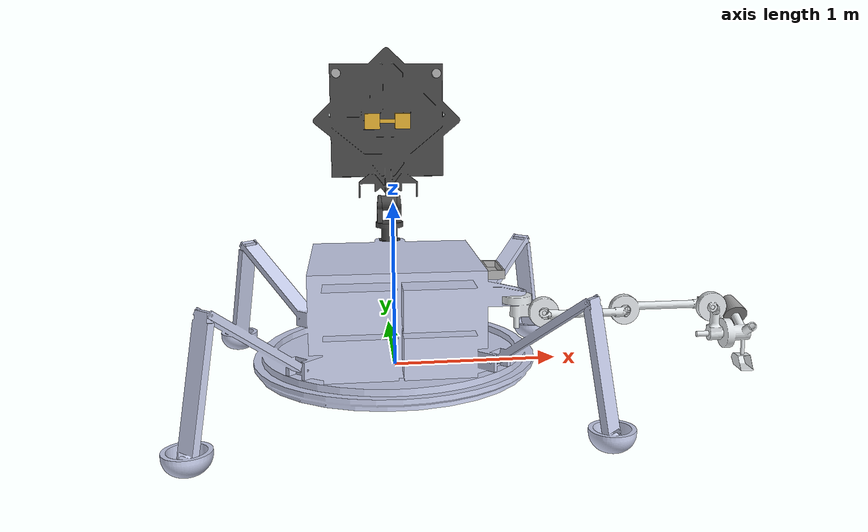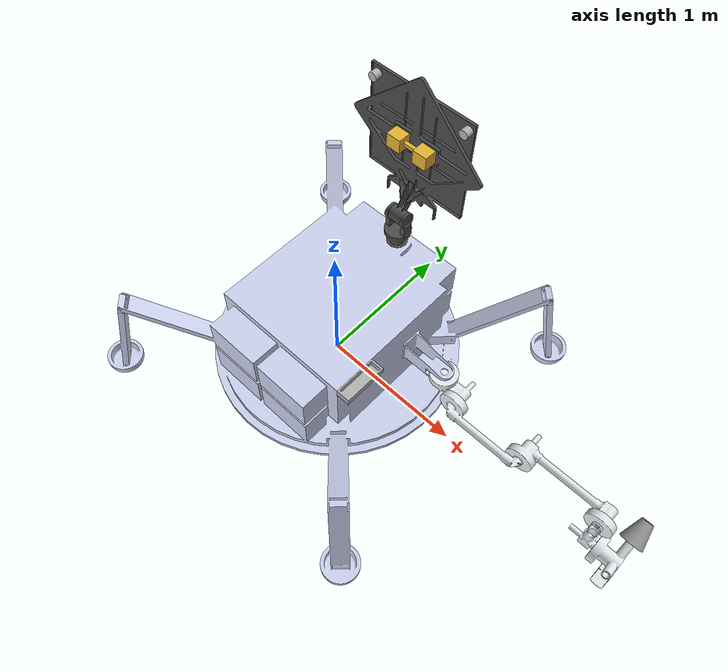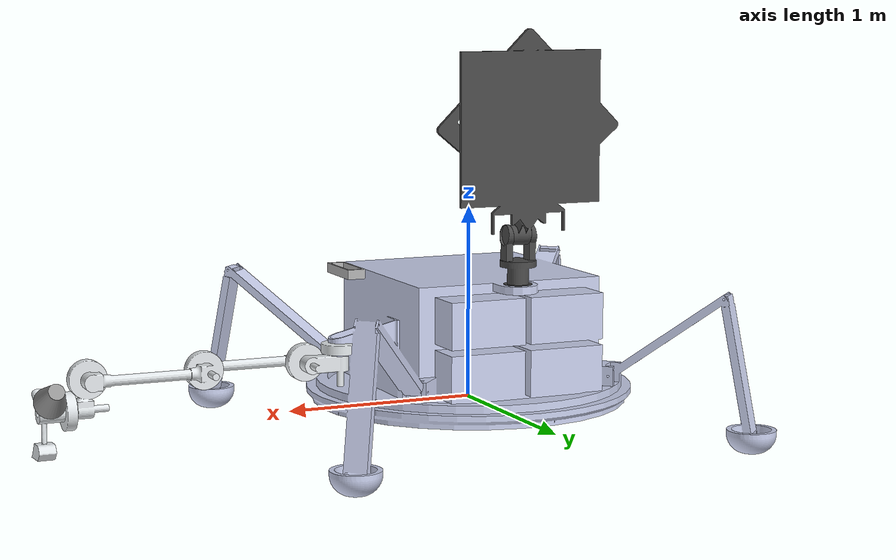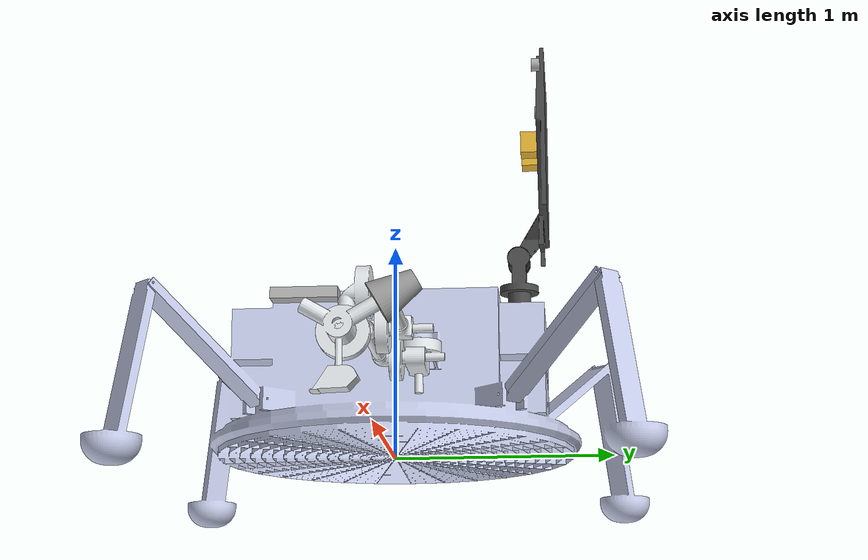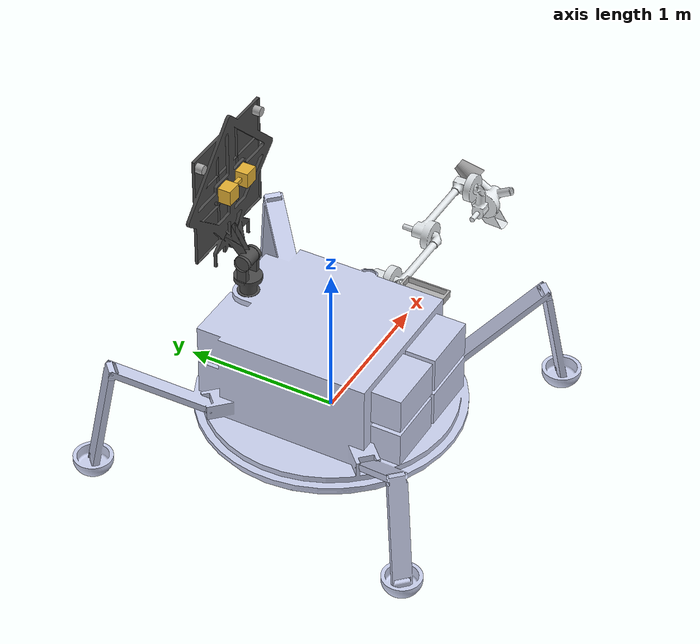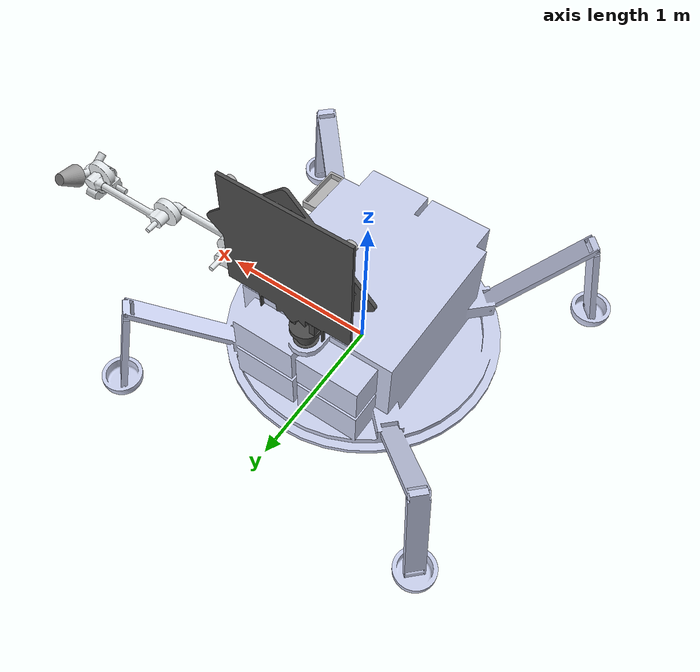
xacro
<?xml version="1.0"?>

<!-- The Notices and Disclaimers for Ocean Worlds Autonomy Testbed for Exploration
     Research and Simulation can be found in README.md in the root directory of
     this repository. -->

<robot xmlns:xacro="http://ros.org/wiki/xacro" name="lander">
  <!-- A non-standard bitmask to prevent the lander from rendering into the irradiance environment map -->
  <xacro:property name="vis_mask" value="0x00010000" />

  <xacro:include filename="$(find ow_lander)/urdf/stereo_camera_triggered.xacro" />
  <xacro:stereo_camera stereo_camera_parent_link="l_ant_panel"
                     hfov="21" img_w="1600" img_h="1200" update_rate="1"
                     off_x="0.53811" off_y="0.07" off_z="0.0" off_R="${pi/2.0}" off_P="${pi}" off_Y="${pi/2.0}"
                     vis_mask="${vis_mask}" />

  <xacro:include filename="$(find ow_lander)/urdf/lander_lights.xacro" />
  <xacro:lander_lights lander_lights_parent_link="l_ant_panel"
                     off_x="0.85" off_y="0.08" off_z="0.0" off_R="-${pi/2.0}" off_P="0.0" off_Y="0.0"
                     vis_mask="${vis_mask}" />

  <xacro:include filename="$(find ow_lander)/urdf/lander_sample_dock.xacro" />
  <xacro:lander_sample_dock lander_sample_dock_parent_link="base_link"
                     off_x="0.5226" off_y="-0.35" off_z="0.32" off_R="-${pi/2.0}" off_P="0.0" off_Y="-${pi/2.0}"
                     vis_mask="${vis_mask}" />

  <xacro:arg name="freeze_base_link" default="false"/>

  <xacro:if value="$(arg freeze_base_link)">
    <link name="world"/>
    <joint name="fixed" type="fixed">
      <origin
        xyz="$(arg x) $(arg y) $(arg z)"
        rpy="$(arg R) $(arg P) $(arg Y)"/>
      <parent link="world"/>
      <child link="base_link"/>
    </joint>
  </xacro:if>

  <link name="base_link">
    <inertial>
      <origin
        xyz="0.002242 0.0014227 0.3241"
        rpy="0 0 0" />
      <mass
        value="921.41" />
      <inertia
        ixx="32.997"
        ixy="-0.36205"
        ixz="-0.10255"
        iyy="34.208"
        iyz="-0.031969"
        izz="63.349" />
    </inertial>
    <visual>
      <origin
        xyz="0 0 0"
        rpy="0 0 0" />
      <geometry>
        <mesh
          filename="package://ow_lander/meshes/base_link.STL" />
      </geometry>
      <material
        name="">
        <color
          rgba="0.79216 0.81961 0.93333 1" />
      </material>
    </visual>
    <collision>
      <origin
        xyz="0 0 0"
        rpy="0 0 0" />
      <geometry>
        <mesh
          filename="package://ow_lander/meshes/base_link.STL" />
      </geometry>
    </collision>
  </link>
  <gazebo reference="base_link">
    <visual>
      <material>
        <diffuse>0.792 0.819 0.933 1</diffuse>
        <specular>0.4 0.4 0.4 1</specular>
        <xacro:material_script />
      </material>
      <plugin name="visibility" filename="libIRGVisibilityPlugin.so">
        <visibility_bitmask>${vis_mask}</visibility_bitmask>
      </plugin>
      <plugin name="OWLightControlPlugin" filename="libOWLightControlPlugin.so" />
    </visual>
    <selfCollide>1</selfCollide>
    <xacro:if value="$(arg freeze_base_link)">
      <collision>
        <surface>
          <contact>
            <collide_bitmask>0x0002</collide_bitmask>
          </contact>
        </surface>
      </collision>
    </xacro:if>
  </gazebo>
  <link name="l_shou">
    <inertial>
      <origin
        xyz="0.0591309542444923 0.00156004002922039 -0.0211248119973624"
        rpy="0 0 0" />
      <mass
        value="7.0292" />
      <inertia
        ixx="0.024707226"
        ixy="0.001106126"
        ixz="0.008780403"
        iyy="0.053430638"
        iyz="0.000231645"
        izz="0.050909058" />
    </inertial>
    <visual>
      <origin
        xyz="0 0 0"
        rpy="0 0 0" />
      <geometry>
        <mesh
          filename="package://ow_lander/meshes/l_shou.STL" />
      </geometry>
      <material
        name="">
        <color
          rgba="0.898039215686275 0.917647058823529 0.929411764705882 1" />
      </material>
    </visual>
    <collision>
      <origin
        xyz="0 0 0"
        rpy="0 0 0" />
      <geometry>
        <mesh
          filename="package://ow_lander/meshes/l_shou_col.STL" />
      </geometry>
    </collision>
  </link>
  <gazebo reference="l_shou">
    <visual>
      <material>
        <diffuse>0.898 0.917 0.929 1</diffuse>
        <specular>0.4 0.4 0.4 1</specular>
        <xacro:material_script />
      </material>
      <plugin name="visibility" filename="libIRGVisibilityPlugin.so">
        <visibility_bitmask>${vis_mask}</visibility_bitmask>
      </plugin>
    </visual>
    <selfCollide>1</selfCollide>
  </gazebo>
  <joint
    name="j_shou_yaw"
    type="revolute">
    <origin
      xyz="0.79 0.175 0.27"
      rpy="-3.1416 0 0" />
    <parent
      link="base_link" />
    <child
      link="l_shou" />
    <axis
      xyz="0 0 -1" />
    <dynamics damping="50.0" friction="2.6"/>
    <limit effort="70.9" velocity="0.15" lower="-1.56" upper="1.43"/>
  </joint>
  <transmission name="shou_yaw_transmission">
    <type>transmission_interface/SimpleTransmission</type>
    <joint name="j_shou_yaw">
      <hardwareInterface>hardware_interface/EffortJointInterface</hardwareInterface>
    </joint>
    <actuator name="shou_yaw_motor">
      <mechanicalReduction>1</mechanicalReduction>
    </actuator>
  </transmission>
  <link name="l_prox">
    <inertial>
      <origin
        xyz="0.162254123421932 -1.66533453693773E-16 -0.104457937721983"
        rpy="0 0 0" />
      <mass
        value="3.98552" />
      <inertia
        ixx="0.010948108"
        ixy="0.000000123"
        ixz="-0.016431513"
        iyy="0.140543709"
        iyz="0"
        izz="0.141291863" />
    </inertial>
    <visual>
      <origin
        xyz="0 0 0"
        rpy="0 0 0" />
      <geometry>
        <mesh
          filename="package://ow_lander/meshes/l_prox.STL" />
      </geometry>
      <material
        name="">
        <color
          rgba="0.898039215686275 0.917647058823529 0.929411764705882 1" />
      </material>
    </visual>
    <collision>
      <origin
        xyz="0 0 0"
        rpy="0 0 0" />
      <geometry>
        <mesh
          filename="package://ow_lander/meshes/l_prox_col.STL" />
      </geometry>
    </collision>
  </link>
  <gazebo reference="l_prox">
    <visual>
      <material>
        <diffuse>0.898 0.917 0.929 1</diffuse>
        <specular>0.4 0.4 0.4 1</specular>
        <xacro:material_script />
      </material>
      <plugin name="visibility" filename="libIRGVisibilityPlugin.so">
        <visibility_bitmask>${vis_mask}</visibility_bitmask>
      </plugin>
    </visual>
    <selfCollide>1</selfCollide>
  </gazebo>
  <joint
    name="j_shou_pitch"
    type="revolute">
    <origin
      xyz="0.16 0 0"
      rpy="1.5708 -2.4652E-32 0" />
    <parent
      link="l_shou" />
    <child
      link="l_prox" />
    <axis
      xyz="0 0 -1" />
    <dynamics damping="50.0" friction="4.6"/>
    <limit effort="101.0" velocity="0.2" lower="-0.4" upper="2.2"/>
  </joint>
  <transmission name="shou_pitch_transmission">
    <type>transmission_interface/SimpleTransmission</type>
    <joint name="j_shou_pitch">
      <hardwareInterface>hardware_interface/EffortJointInterface</hardwareInterface>
    </joint>
    <actuator name="shou_pitch_motor">
      <mechanicalReduction>1</mechanicalReduction>
    </actuator>
  </transmission>
  <link name="l_dist">
    <inertial>
      <origin
        xyz="0.221081948151538 -5.55111512312578E-16 -0.0307957719833337"
        rpy="0 0 0" />
      <mass
        value="7.67831" />
      <inertia
        ixx="0.02219061"
        ixy="0.000000071"
        ixz="0.021706466"
        iyy="0.50510019"
        iyz="0"
        izz="0.497745918" />
    </inertial>
    <visual>
      <origin
        xyz="0 0 0"
        rpy="0 0 0" />
      <geometry>
        <mesh
          filename="package://ow_lander/meshes/l_dist.STL" />
      </geometry>
      <material
        name="">
        <color
          rgba="0.898039215686275 0.917647058823529 0.929411764705882 1" />
      </material>
    </visual>
    <collision>
      <origin
        xyz="0 0 0"
        rpy="0 0 0" />
      <geometry>
        <mesh
          filename="package://ow_lander/meshes/l_dist_col.STL" />
      </geometry>
    </collision>
  </link>
  <gazebo reference="l_dist">
    <visual>
      <material>
        <diffuse>0.898 0.917 0.929 1</diffuse>
        <specular>0.4 0.4 0.4 1</specular>
        <xacro:material_script />
      </material>
      <plugin name="visibility" filename="libIRGVisibilityPlugin.so">
        <visibility_bitmask>${vis_mask}</visibility_bitmask>
      </plugin>
    </visual>
    <selfCollide>1</selfCollide>
  </gazebo>
  <joint
    name="j_prox_pitch"
    type="continuous">
    <origin
      xyz="0.53 0 0"
      rpy="9.7855E-17 0 -4.9304E-32" />
    <parent
      link="l_prox" />
    <child
      link="l_dist" />
    <axis
      xyz="0 0 -1" />
    <dynamics damping="50.0" friction="2.7"/>
    <limit effort="73.0" velocity="0.2" lower="-3.2" upper="3.2"/>
  </joint>
  <transmission name="prox_pitch_transmission">
    <type>transmission_interface/SimpleTransmission</type>
    <joint name="j_prox_pitch">
      <hardwareInterface>hardware_interface/EffortJointInterface</hardwareInterface>
    </joint>
    <actuator name="prox_pitch_motor">
      <mechanicalReduction>1</mechanicalReduction>
    </actuator>
  </transmission>
  <link name="l_wrist">
    <inertial>
      <origin
        xyz="0.0815501188839358 0.00258480207251011 -0.0286945140138527"
        rpy="0 0 0" />
      <mass
        value="4.20589" />
      <inertia
        ixx="0.013575388"
        ixy="-0.000000011"
        ixz="0.010276112"
        iyy="0.041535122"
        iyz="0.00000001"
        izz="0.040985679" />
    </inertial>
    <visual>
      <origin
        xyz="0 0 0"
        rpy="0 0 0" />
      <geometry>
        <mesh
          filename="package://ow_lander/meshes/l_wrist.STL" />
      </geometry>
      <material
        name="">
        <color
          rgba="0.898039215686275 0.917647058823529 0.929411764705882 1" />
      </material>
    </visual>
    <collision>
      <origin
        xyz="0 0 0"
        rpy="0 0 0" />
      <geometry>
        <mesh
          filename="package://ow_lander/meshes/l_wrist_col.STL" />
      </geometry>
    </collision>
  </link>
  <gazebo reference="l_wrist">
    <visual>
      <material>
        <diffuse>0.898 0.917 0.929 1</diffuse>
        <specular>0.4 0.4 0.4 1</specular>
        <xacro:material_script />
      </material>
      <plugin name="visibility" filename="libIRGVisibilityPlugin.so">
        <visibility_bitmask>${vis_mask}</visibility_bitmask>
      </plugin>
    </visual>
    <selfCollide>1</selfCollide>
  </gazebo>
  <joint
    name="j_dist_pitch"
    type="continuous">
    <origin
      xyz="0.586 0 -0.15"
      rpy="3.1416 2.1341E-16 1.5708" />
    <parent
      link="l_dist" />
    <child
      link="l_wrist" />
    <axis
      xyz="0 0 1" />
    <dynamics damping="50.0" friction="0.3"/>
    <limit effort="25.7" velocity="0.2" lower="-2.2" upper="3.65" />
  </joint>
  <transmission name="dist_pitch_transmission">
    <type>transmission_interface/SimpleTransmission</type>
    <joint name="j_dist_pitch">
      <hardwareInterface>hardware_interface/EffortJointInterface</hardwareInterface>
    </joint>
    <actuator name="dist_pitch_motor">
      <mechanicalReduction>1</mechanicalReduction>
    </actuator>
  </transmission>
  <gazebo reference="j_dist_pitch">
    <provideFeedback>true</provideFeedback>
  </gazebo>
  <gazebo>
    <plugin name="ft_sensor" filename="libgazebo_ros_ft_sensor.so">
      <jointName>j_dist_pitch</jointName>
      <topicName>/_original/arm_end_effector_force_torque</topicName>
      <updateRate>200</updateRate>  <!-- Barret F/T sensor runs at 250 Hz and has max update rate of 2500 Hz
                                         However, the gazebo_ros_ft_sensor plugin is only able to run at a max of 200 -->
      <gaussianNoise>0.2</gaussianNoise> <!-- estimated based on a profile of the barret ft sensor -->
    </plugin>
  </gazebo>
  <link name="l_hand">
    <inertial>
      <origin
        xyz="-0.00481701429042641 -3.3345796601747E-07 0.076155053161125"
        rpy="0 0 0" />
      <mass
        value="6.56759" />
      <inertia
        ixx="0.031145341"
        ixy="-0.000000019"
        ixz="0.000003178"
        iyy="0.03114165"
        iyz="0.000000034"
        izz="0.021681969" />
    </inertial>
    <visual>
      <origin
        xyz="0 0 0"
        rpy="0 0 0" />
      <geometry>
        <mesh
          filename="package://ow_lander/meshes/l_hand.STL" />
      </geometry>
      <material
        name="">
        <color
          rgba="0.898039215686275 0.917647058823529 0.929411764705882 1" />
      </material>
    </visual>
    <collision>
      <origin
        xyz="0 0 0"
        rpy="0 0 0" />
      <geometry>
        <mesh
          filename="package://ow_lander/meshes/l_hand_col.STL" />
      </geometry>
    </collision>
  </link>
  <gazebo reference="l_hand">
    <visual>
      <material>
        <diffuse>0.898 0.917 0.929 1</diffuse>
        <specular>0.4 0.4 0.4 1</specular>
        <xacro:material_script />
      </material>
      <plugin name="visibility" filename="libIRGVisibilityPlugin.so">
        <visibility_bitmask>${vis_mask}</visibility_bitmask>
      </plugin>
    </visual>
    <selfCollide>1</selfCollide>
    <!-- Keep the collision between the terrain and the hand turned off as it
         results in a slower simulation and worse physics. -->

    <collision>
      <surface>
        <contact>
          <collide_bitmask>0x0002</collide_bitmask>
        </contact>
      </surface>
    </collision>

  </gazebo>

  <joint
    name="j_hand_yaw"
    type="continuous">
    <origin
      xyz="0.163 0.2 0"
      rpy="1.5708 2.8911E-17 -3.228E-16" />
    <parent
      link="l_wrist" />
    <child
      link="l_hand" />
    <axis
      xyz="0 0 -1" />
    <dynamics damping="50.0" friction="0.3"/>
    <limit effort="25.7" velocity="0.2" lower="-3.2" upper="3.2"/>
  </joint>
  <transmission name="hand_yaw_transmission">
    <type>transmission_interface/SimpleTransmission</type>
    <joint name="j_hand_yaw">
      <hardwareInterface>hardware_interface/EffortJointInterface</hardwareInterface>
    </joint>
    <actuator name="hand_yaw_motor">
      <mechanicalReduction>1</mechanicalReduction>
    </actuator>
  </transmission>

  <link name="l_scoop">
    <inertial>
      <origin
        xyz="0.00131473194901655 -1.3855583347322E-13 0.0453283797652499"
        rpy="0 0 0" />
      <mass
        value="0.30936" />
      <inertia
        ixx="0.001031142"
        ixy="0"
        ixz="0.000157564"
        iyy="0.001225161"
        iyz="0"
        izz="0.000591262" />
    </inertial>
    <visual>
      <origin
        xyz="0 0 0"
        rpy="0 0 0" />
      <geometry>
        <mesh
          filename="package://ow_lander/meshes/l_scoop.STL" />
      </geometry>
      <material
        name="">
        <color
          rgba="0.898039215686275 0.917647058823529 0.929411764705882 1" />
      </material>
    </visual>
    <!-- scoop bottom -->
    <collision>
      <origin
        xyz="0.030115 0 0.076505"
        rpy="0 -0.0349040838 0" />
      <geometry>
          <box size="0.1273 0.0818 0.002"/>
      </geometry>
    </collision>
    <!-- scoop backing (flat) -->
    <collision>
      <origin
        xyz="-0.032195 0 0.036854"
        rpy="0 -1.60570041059 0" />
      <geometry>
          <box size="0.0749 0.0818 0.002"/>
      </geometry>
    </collision>
    <!-- scoop left sidewall -->
    <collision>
      <origin
        xyz="0.025676 -0.0409 0.038875"
        rpy="1.5708 -0.0349040838 0" />
      <geometry>
          <box size="0.1158 0.0749 0.002"/>
      </geometry>
    </collision>
    <!-- scoop right sidewall -->
    <collision>
      <origin
        xyz="0.025676 0.0409 0.038875"
        rpy="1.5708 -0.0349040838 0" />
      <geometry>
          <box size="0.1158 0.0749 0.002"/>
      </geometry>
    </collision>
    <!-- scoop top -->
    <collision>
      <origin
        xyz="0.000264 0 0.000512"
        rpy="0 -0.0349040838 0" />
      <geometry>
          <box size="0.06234 0.0818 0.002"/>
      </geometry>
    </collision>
    <!-- scoop wide tip -->
    <collision>
      <origin
        xyz="0.090908 0 0.079513"
        rpy="0 -0.254542712 0" />
      <geometry>
          <box size="0.008122 0.0818 0.002"/>
      </geometry>
    </collision>
    <!-- scoop wide tip -->
    <collision>
      <origin
        xyz="0.092572 0 0.079946"
        rpy="0 -0.254542712 0" />
      <geometry>
          <box size="0.01156 0.04346 0.001"/>
      </geometry>
    </collision>
  </link>
  <gazebo reference="l_scoop">
    <visual>
      <material>
        <diffuse>0.898 0.917 0.929 1</diffuse>
        <specular>0.4 0.4 0.4 1</specular>
        <xacro:material_script />
      </material>
      <plugin name="visibility" filename="libIRGVisibilityPlugin.so">
        <visibility_bitmask>${vis_mask}</visibility_bitmask>
      </plugin>
    </visual>
    <selfCollide>1</selfCollide>
    <collision>
      <surface>
        <contact>
          <collide_bitmask>0x0003</collide_bitmask> <!-- Enable collision with the terrain by matching the bitmask -->
          <ode>
            <kd>1e12</kd>
          </ode>
        </contact>
      </surface>
    </collision>
  </gazebo>

  <!-- link that we can reference in Gazebo to get altitude of tip
       of scoop above the terrain. Note that without an inertial
       tag, the link will not show up in the SDF/Gazebo at all -->
  <link name="l_scoop_tip">
    <inertial>
      <mass value="0.001"/>
      <inertia ixx="1" ixy="0" ixz="0" iyy="1" iyz="0" izz="1"/>
    </inertial>
  </link>
  <joint name="l_scoop_tip_joint" type="fixed">
    <origin xyz="0.1 0.0 0.08" rpy="0 0 0"/>
    <parent link="l_scoop"/>
    <child link="l_scoop_tip"/>
  </joint>
  <gazebo reference="l_scoop_tip_joint">
    <preserveFixedJoint>true</preserveFixedJoint>
  </gazebo>

  <joint
    name="j_scoop_yaw"
    type="continuous">
    <origin
      xyz="0.15 0 0"
      rpy="1.5708 -1.1102E-16 1.5708" />
    <parent
      link="l_hand" />
    <child
      link="l_scoop" />
    <axis
      xyz="0 0 -1" />
    <dynamics damping="50.0" friction="0.5"/>
    <limit effort="20.0" velocity="0.2" lower="-3.2" upper="3.2"/>
  </joint>
  <transmission name="scoop_yaw_transmission">
    <type>transmission_interface/SimpleTransmission</type>
    <joint name="j_scoop_yaw">
      <hardwareInterface>hardware_interface/EffortJointInterface</hardwareInterface>
    </joint>
    <actuator name="scoop_yaw_motor">
      <mechanicalReduction>1</mechanicalReduction>
    </actuator>
  </transmission>

  <link name="l_grinder">
    <inertial>
      <origin
        xyz="0 0 0.06"
        rpy="0 0 0" />
      <mass
        value="0.5" />
      <inertia
        ixx="0.002"
        ixy="0"
        ixz="0"
        iyy="0.002"
        iyz="0"
        izz="0.002" />
    </inertial>
    <visual>
      <origin
        xyz="0 0 0"
        rpy="0 0 0" />
      <geometry>
        <mesh
          filename="package://ow_lander/meshes/l_grinder.STL" />
      </geometry>
      <material
       name="">
       <color
         rgba="0.6 0.6 0.6 1" />
     </material>
    </visual>
    <collision>
      <origin
        xyz="0.08 0 0"
        rpy="1.57 1.57 1.57" />
      <geometry>
        <cylinder radius="0.04" length="0.16"/>
      </geometry>
    </collision>
    <collision>
      <origin
        xyz="0.06 0 0"
        rpy="1.57 1.57 1.57" />
      <geometry>
        <cylinder radius="0.05" length="0.12"/>
      </geometry>
    </collision>
    <collision>
      <origin
        xyz="0.04 0 0"
        rpy="1.57 1.57 1.57" />
      <geometry>
        <cylinder radius="0.06" length="0.08"/>
      </geometry>
    </collision>
    <collision>
      <origin
        xyz="0.02 0 0"
        rpy="1.57 1.57 1.57" />
      <geometry>
        <cylinder radius="0.07" length="0.04"/>
      </geometry>
    </collision>
    <collision>
      <origin
        xyz="0.005 0 0"
        rpy="1.57 1.57 1.57" />
      <geometry>
        <cylinder radius="0.075" length="0.01"/>
      </geometry>
    </collision>
  </link>
  <gazebo reference="l_grinder">
    <visual>
      <material>
        <diffuse>0.6 0.6 0.6 1</diffuse>
        <specular>0.2 0.2 0.2 1</specular>
        <xacro:material_script />
      </material>
      <plugin name="visibility" filename="libIRGVisibilityPlugin.so">
        <visibility_bitmask>${vis_mask}</visibility_bitmask>
      </plugin>
    </visual>
    <selfCollide>1</selfCollide>
    <collision>
      <surface>
        <contact>
          <collide_bitmask>0x0001</collide_bitmask> <!-- Enable collision with the terrain by matching the bitmask -->
          <ode>
            <kp>1e+10</kp>
            <kd>1e+10</kd>
          </ode>
        </contact>
      </surface>
    </collision>
  </gazebo>
  <joint
    name="j_grinder"
    type="revolute">
    <origin xyz="-0.075 -0.129903811 0" rpy="0 0 ${-pi*2/3}" />
    <parent link="l_hand" />
    <child link="l_grinder" />
    <axis xyz="-1 0 0" />
    <dynamics damping="1" />
    <limit effort="1.0" velocity="0.1" lower="-3.2" upper="3.2"/>
  </joint>
  <transmission name="grinder_yaw_transmission">
    <type>transmission_interface/SimpleTransmission</type>
    <joint name="j_grinder">
      <hardwareInterface>hardware_interface/EffortJointInterface</hardwareInterface>
    </joint>
    <actuator name="grinder_yaw_motor">
      <mechanicalReduction>1</mechanicalReduction>
    </actuator>
  </transmission>

  <!-- link that we can reference in Gazebo to get altitude of tip
     of grinder above the terrain. Note that without an inertial
     tag, the link will not show up in the SDF/Gazebo at all -->
  <link name="l_grinder_tip">
    <inertial>
      <mass value="0.0"/>
      <inertia ixx="0" ixy="0" ixz="0" iyy="0" iyz="0" izz="0"/>
    </inertial>
  </link>
  <joint name="l_grinder_tip_joint" type="fixed">
    <origin xyz="0.16 0 0" rpy="0 0 0"/>
    <parent link="l_grinder"/>
    <child link="l_grinder_tip"/>
  </joint>
  <gazebo reference="l_grinder_tip_joint">
    <preserveFixedJoint>true</preserveFixedJoint>
  </gazebo>

  <link name="l_ant_foot">
    <inertial>
      <origin
        xyz="-2.24681384608516E-13 8.58202398035246E-14 -0.144967812675424"
        rpy="0 0 0" />
      <mass
        value="0.939669875432375" />
      <inertia
        ixx="0.0128625280820728"
        ixy="-0.0550577074342039"
        ixz="4.59706499938512E-09"
        iyy="0.252496809842602"
        iyz="4.83511231053058E-10"
        izz="0.265359337924673" />
    </inertial>
    <visual>
      <origin
        xyz="0 0 0"
        rpy="0 0 0" />
      <geometry>
        <mesh
          filename="package://ow_lander/meshes/l_ant_foot.STL" />
      </geometry>
      <material
        name="">
        <color
          rgba="0.294117647058824 0.294117647058824 0.294117647058824 1" />
      </material>
    </visual>
    <collision>
      <origin
        xyz="0 0 0"
        rpy="0 0 0" />
      <geometry>
        <mesh
          filename="package://ow_lander/meshes/l_ant_foot_col.STL" />
      </geometry>
    </collision>
  </link>
  <gazebo reference="l_ant_foot">
    <visual>
      <material>
        <diffuse>0.294 0.294 0.294 1</diffuse>
        <specular>0.4 0.4 0.4 1</specular>
        <xacro:material_script />
      </material>
      <plugin name="visibility" filename="libIRGVisibilityPlugin.so">
        <visibility_bitmask>${vis_mask}</visibility_bitmask>
      </plugin>
    </visual>
    <selfCollide>1</selfCollide>
  </gazebo>
  <joint
    name="j_ant_pan"
    type="continuous">
    <origin
      xyz="0 0.58 0.675"
      rpy="-3.1416 0 0" />
    <parent
      link="base_link" />
    <child
      link="l_ant_foot" />
    <axis
      xyz="0 0 -1" />
    <dynamics damping="50.0" />
    <limit effort="80.0" velocity="0.2" lower="-3.2" upper="3.2" />
  </joint>
  <transmission name="ant_pan_transmission">
    <type>transmission_interface/SimpleTransmission</type>
    <joint name="j_ant_pan">
      <hardwareInterface>hardware_interface/EffortJointInterface</hardwareInterface>
    </joint>
    <actuator name="ant_pan_motor">
      <mechanicalReduction>1</mechanicalReduction>
    </actuator>
  </transmission>
  <link name="l_ant_panel">
    <inertial>
      <origin
        xyz="0.471831233065397 0.106375900601898 -0.000999999214864045"
        rpy="0 0 0" />
      <mass
        value="16.0257517514408" />
      <inertia
        ixx="0.0128625280820728"
        ixy="-0.0550577074342039"
        ixz="4.59706499938512E-09"
        iyy="0.252496809842602"
        iyz="4.83511231053058E-10"
        izz="0.265359337924673" />
    </inertial>
    <visual>
      <origin
        xyz="0 0 0"
        rpy="0 0 0" />
      <geometry>
        <mesh
          filename="package://ow_lander/meshes/l_ant_panel.STL" />
      </geometry>
      <material
        name="">
        <color
          rgba="0.294117647058824 0.294117647058824 0.294117647058824 1" />
      </material>
    </visual>
    <collision>
      <origin
        xyz="0 0 0"
        rpy="0 0 0" />
      <geometry>
        <mesh
          filename="package://ow_lander/meshes/l_ant_panel_col.STL" />
      </geometry>
    </collision>
  </link>
  <gazebo reference="l_ant_panel">
    <visual>
      <material>
        <diffuse>0.294 0.294 0.294 1</diffuse>
        <specular>0.4 0.4 0.4 1</specular>
        <xacro:material_script />
      </material>
      <plugin name="visibility" filename="libIRGVisibilityPlugin.so">
        <visibility_bitmask>${vis_mask}</visibility_bitmask>
      </plugin>
    </visual>
    <selfCollide>1</selfCollide>
  </gazebo>
  <joint
    name="j_ant_tilt"
    type="continuous">
    <origin
      xyz="0 0 -0.24805"
      rpy="3.1416 1.5708 0" />
    <parent
      link="l_ant_foot" />
    <child
      link="l_ant_panel" />
    <axis
      xyz="0 0 -1" />
    <dynamics damping="50.0" />
    <limit effort="100.0" velocity="0.2" lower="-1.57" upper="1.57"/>
  </joint>
  <transmission name="ant_tilt_transmission">
    <type>transmission_interface/SimpleTransmission</type>
    <joint name="j_ant_tilt">
      <hardwareInterface>hardware_interface/EffortJointInterface</hardwareInterface>
    </joint>
    <actuator name="ant_tilt_motor">
      <mechanicalReduction>1</mechanicalReduction>
    </actuator>
  </transmission>

  <gazebo>
    <plugin name="gazebo_ros_control" filename="libgazebo_ros_control.so">
      <robotNamespace>/</robotNamespace>
    </plugin>

    <plugin name="ow_faults_injection_joints" filename="libow_faults_injection_joints.so">
      <robotNamespace>/</robotNamespace>
    </plugin>

    <plugin name="BalovnevModelPlugin" filename="libBalovnevModelPlugin.so">
      <robotNamespace>/</robotNamespace>
    </plugin>

    <plugin name="RegolithPlugin" filename="libRegolithPlugin.so">
      <!-- model that gets spawned into scoop -->
      <regolith_model_uri>model://sphere_2cm</regolith_model_uri>
      <!-- cubed meters that must be removed from terrain before a regolith
           particle is spawned -->
      <spawn_volume_threshold>1e-4</spawn_volume_threshold>
      <!-- horizontal spacing between each consecutive regolith spawned -->
      <spawn_spacing>0.021</spawn_spacing>
    </plugin>

    <!-- Publish joint states so rviz can visualize them. -->
  </gazebo>
</robot>

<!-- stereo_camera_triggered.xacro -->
<!-- The Notices and Disclaimers for Ocean Worlds Autonomy Testbed for Exploration
     Research and Simulation can be found in README.md in the root directory of
     this repository. -->

<robot xmlns:xacro="http://ros.org/wiki/xacro" name="stereo_camera">

  <xacro:property name="Camera01Name"       value="StereoCamera" />
  <xacro:property name="Camera01UpdateRate" value="5" />
  <xacro:property name="camera_baseline"    value="0.2" />
  <xacro:property name="camera_head_mass"   value="0.1" />

  <xacro:property name="deg_to_rad"         value="0.0174533" />

  <xacro:include filename="$(find ow_lander)/urdf/material_script.xacro" />

  <xacro:macro name="stereo_camera" params="stereo_camera_parent_link hfov img_w img_h update_rate off_x off_y off_z off_R off_P off_Y vis_mask">

  <link name="${Camera01Name}_head_link">
    <collision>
      <origin xyz="0 0 0" rpy="0 0 0"/>
      <geometry>
        <box size="0.1 0.1 0.1"/>
      </geometry>
    </collision>
    <visual>
      <origin xyz="0 0 0"  rpy="0 0 0"/>
      <geometry>
        <box size="0.025 ${camera_baseline} 0.025"/>
      </geometry>
      <material name="">
        <color rgba="0.9 0.7 0.2 1" />
      </material>
    </visual>
    <visual>
      <origin xyz="0 ${camera_baseline/2} 0"  rpy="0 0 0"/>
      <geometry>
        <box size="0.1 0.1 0.1"/>
      </geometry>
      <material name="">
        <color rgba="0.9 0.7 0.2 1" />
      </material>
    </visual>
    <visual>
      <origin xyz="0 -${camera_baseline/2} 0"  rpy="0 0 0"/>
      <geometry>
        <box size="0.1 0.1 0.1"/>
      </geometry>
      <material name="">
        <color rgba="0.9 0.7 0.2 1" />
      </material>
    </visual>
    <inertial>
      <mass value="${camera_head_mass}" />
      <origin xyz="0 0 0" rpy="0 0 0"/>
      <inertia
          ixx="${camera_head_mass / 12.0 * (camera_baseline*camera_baseline + 0.1*0.1)}" ixy="0.0" ixz="0.0"
          iyy="${camera_head_mass / 12.0 * (0.1*0.1 + 0.1*0.1)}" iyz="0.0"
          izz="${camera_head_mass / 12.0 * (camera_baseline*camera_baseline + 0.1*0.1)}"/>
   </inertial>
  </link>
  <joint name="${Camera01Name}_joint" type="fixed">
    <parent link="${stereo_camera_parent_link}"/>
    <child link="${Camera01Name}_head_link"/>
    <origin xyz="${off_x} ${off_y} ${off_z}" rpy="${off_R} ${off_P} ${off_Y}" />
  </joint>

  <gazebo reference="${Camera01Name}_head_link">
    <visual>
      <material>
        <diffuse>0.9 0.7 0.2 1</diffuse>
        <specular>0.4 0.4 0.4 1</specular>
        <xacro:material_script />
      </material>
      <plugin name="visibility" filename="libIRGVisibilityPlugin.so">
        <visibility_bitmask>${vis_mask}</visibility_bitmask>
      </plugin>
    </visual>
  </gazebo>

  <!-- example for stereo setup is here: -->
  <!-- https://bitbucket.org/osrf/drcsim/src/52a691b8956045442ef22ba0aaee4520716807ff/multisense_sl_description/urdf/multisense_sl.urdf?at=default#cl-200 -->
  <!-- https://bitbucket.org/osrf/drcsim/src/52a691b8956045442ef22ba0aaee4520716807ff/drcsim_gazebo/launch/atlas_bringup.launch?at=default#cl-38 -->

  <link name="${Camera01Name}Left_link"/>
  <link name="${Camera01Name}Left_optical_frame"/>
  <joint name="leftCamera_joint" type="fixed">
    <origin xyz="0.0 ${camera_baseline/2} 0.0" rpy="0 0 0"/>
    <parent link="${Camera01Name}_head_link"/>
    <child link="${Camera01Name}Left_link"/>
  </joint>
  <joint name="leftCamera_optical_joint" type="fixed">
    <origin xyz="0.0 0.0 0.0" rpy="-${pi/2} 0 -${pi/2}"/>
    <parent link="${Camera01Name}Left_link"/>
    <child link="${Camera01Name}Left_optical_frame"/>
  </joint>

  <link name="${Camera01Name}Right_link"/>
  <link name="${Camera01Name}Right_optical_frame"/>
  <joint name="rightCamera_joint" type="fixed">
    <origin xyz="0.0 -${camera_baseline/2} 0.0" rpy="0 0 0"/>
    <parent link="${Camera01Name}_head_link"/>
    <child link="${Camera01Name}Right_link"/>
  </joint>
  <joint name="rightCamera_optical_joint" type="fixed">
    <origin xyz="0.0 0.0 0.0" rpy="-${pi/2} 0 -${pi/2}"/>
    <parent link="${Camera01Name}Right_link"/>
    <child link="${Camera01Name}Right_optical_frame"/>
  </joint>

  <gazebo reference="${Camera01Name}Left_link">
    <sensor type="multicamera" name="${Camera01Name}">
      <update_rate>${update_rate}</update_rate>
      <always_on>0</always_on>
      <camera name="left">
        <horizontal_fov>${hfov*deg_to_rad}</horizontal_fov>
        <image>
          <width>${img_w}</width>
          <height>${img_h}</height>
          <format>R8G8B8</format>
        </image>
        <clip>
          <near>0.1</near>
          <far>200000</far>
        </clip>
      </camera>

      <camera name="right">
        <pose>0 -${camera_baseline} 0 0 0 0</pose>
         <horizontal_fov>${hfov*deg_to_rad}</horizontal_fov>
        <image>
          <width>${img_w}</width>
          <height>${img_h}</height>
          <format>R8G8B8</format>
        </image>
        <clip>
          <near>0.1</near>
          <far>200000</far>
        </clip>
      </camera>

      <plugin name="stereo_camera_controller" filename="libgazebo_ros_triggered_multicamera.so">
        <cameraName>${Camera01Name}</cameraName>
        <alwaysOn>true</alwaysOn>
        <triggerTopicName>image_trigger</triggerTopicName>
        <updateRate>0</updateRate>
        <imageTopicName>image_raw</imageTopicName>
        <cameraInfoTopicName>camera_info</cameraInfoTopicName>
        <frameName>${Camera01Name}Left_optical_frame</frameName>
        <hackBaseline>${camera_baseline}</hackBaseline>
        <distortionK1>0.0</distortionK1>
        <distortionK2>0.0</distortionK2>
        <distortionK3>0.0</distortionK3>
        <distortionT1>0.0</distortionT1>
        <distortionT2>0.0</distortionT2>
      </plugin>
      <plugin name="LensFlare" filename="libOWLensFlareSensorPlugin.so">
        <compositor>CameraLensFlare/PF_FLOAT32_R</compositor>
      </plugin>
      <plugin name="CameraSim" filename="libIRGCameraSimSensorPlugin.so" >
        <exposure>0.001</exposure>
        <energy_conversion>80.0</energy_conversion>
      </plugin>
    </sensor>
  </gazebo>

  <!-- "Center Camera" for "video" -->
  <link name="${Camera01Name}Center_link"/>
  <link name="${Camera01Name}Center_optical_frame"/>
  <joint name="CenterCamera_joint" type="fixed">
    <origin xyz="0.0 0.0 0.0" rpy="0 0 0"/>
    <parent link="${Camera01Name}_head_link"/>
    <child link="${Camera01Name}Center_link"/>
  </joint>
  <joint name="CenterCamera_optical_joint" type="fixed">
    <origin xyz="0.0 0.0 0.0" rpy="-${pi/2} 0 -${pi/2}"/>
    <parent link="${Camera01Name}Center_link"/>
    <child link="${Camera01Name}Center_optical_frame"/>
  </joint>

  <gazebo reference="${Camera01Name}Center_link">
    <material>Gazebo/Blue</material>
    <sensor type="camera" name="${Camera01Name}Video">
      <update_rate>30.0</update_rate>
      <camera name="head">
        <horizontal_fov>${hfov*deg_to_rad}</horizontal_fov>
        <image>
          <width>${img_w/2}</width>
          <height>${img_h/2}</height>
          <format>R8G8B8</format>
        </image>
        <clip>
          <near>0.1</near>
          <far>200000</far>
        </clip>
      </camera>
      <plugin name="lensflare" filename="libOWLensFlareSensorPlugin.so">
        <compositor>CameraLensFlare/PF_FLOAT32_R</compositor>
      </plugin>
      <plugin name="camera_controller" filename="libgazebo_ros_camera.so">
        <alwaysOn>true</alwaysOn>
        <updateRate>0.0</updateRate>
        <cameraName>${Camera01Name}Video</cameraName>
        <imageTopicName>image_raw</imageTopicName>
        <cameraInfoTopicName>camera_info</cameraInfoTopicName>
        <frameName>CenterCamera_optical_joint</frameName>
        <distortionK1>0.0</distortionK1>
        <distortionK2>0.0</distortionK2>
        <distortionK3>0.0</distortionK3>
        <distortionT1>0.0</distortionT1>
        <distortionT2>0.0</distortionT2>
      </plugin>
    </sensor>
  </gazebo>

  </xacro:macro>
</robot>

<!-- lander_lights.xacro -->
<!-- The Notices and Disclaimers for Ocean Worlds Autonomy Testbed for Exploration
     Research and Simulation can be found in README.md in the root directory of
     this repository. -->

<robot xmlns:xacro="http://ros.org/wiki/xacro" name="lander_lights">

  <xacro:include filename="$(find ow_lander)/urdf/material_script.xacro" />

  <xacro:macro name="lander_lights" params="lander_lights_parent_link off_x off_y off_z off_R off_P off_Y vis_mask" >
    <link name="lander_lights_link" />

    <joint name="lander_lights_joint" type="fixed">
      <parent link="${lander_lights_parent_link}"/>
      <child link="lander_lights_link"/>
      <origin xyz="${off_x} ${off_y} ${off_z}" rpy="${off_R} ${off_P} ${off_Y}" />
      <axis xyz="0 1 0"/>
    </joint>
    <!-- NOTE: preserveFixedJoint tag required for lights to survive URDF to SDF conversion -->
    <gazebo reference='lander_lights_joint'>
      <preserveFixedJoint>true</preserveFixedJoint>
    </gazebo>

    <xacro:lander_light_link suffix="0" roll="0" pitch="0" y="0.33" />
    <xacro:lander_light_link suffix="1" roll="0" pitch="0" y="-0.33" />
  </xacro:macro>

  <xacro:property name="light_mass" value="0.2" />

  <xacro:macro name="lander_light_link" params="suffix roll pitch y">
    <link name="lander_light${suffix}">
      <collision>
        <origin rpy="0 0 0" xyz="0 0 0.025"/>
        <geometry>
          <cylinder length="0.05" radius="0.03" />
        </geometry>
      </collision>
      <visual>
        <origin rpy="0 0 0" xyz="0 0 0.025"/>
        <geometry>
          <cylinder length="0.05" radius="0.03" />
        </geometry>
        <material name="">
          <color rgba="0.7 0.7 0.7 1" />
        </material>
      </visual>
      <inertial>
        <origin rpy="0 0 0" xyz="0 0 0.05"/>
        <mass value="0.01"/>
        <inertia
            ixx="${light_mass / 12.0 * (0.1*0.1 + 0.06*0.06)}" ixy="0.0" ixz="0.0"
            iyy="${light_mass / 12.0 * (0.06*0.06 + 0.1*0.1)}" iyz="0.0"
            izz="${light_mass / 12.0 * (0.06*0.06 + 0.06*0.06)}"/>
      </inertial>
    </link>

    <joint name="lander_light_joint${suffix}" type="fixed">
      <origin rpy="${roll} ${pitch} 0" xyz="0 ${y} 0"/>
      <parent link="lander_lights_link"/>
      <child link="lander_light${suffix}"/>
    </joint>

    <gazebo reference="lander_light${suffix}">
      <visual>
        <material>
          <diffuse>0.7 0.7 0.7 1</diffuse>
          <specular>0.4 0.4 0.4 1</specular>
          <xacro:material_script />
        </material>
        <plugin name="visibility" filename="libIRGVisibilityPlugin.so">
          <visibility_bitmask>${vis_mask}</visibility_bitmask>
        </plugin>
      </visual>
      <light name="lander_light_light${suffix}" type="spot">
        <diffuse>1 1 1 1</diffuse>
        <attenuation>
          <range>100</range>
          <!-- Our shader uses a quadratic term for attenuation, but no constant or linear terms.
            Attenuation = 1.0 / (q * d^2) So q = 0.04 gives us 25 W/m^2 at 1 meter.-->
          <quadratic>0.04</quadratic>
        </attenuation>
        <direction>0 0 -1</direction>
        <spot>
          <!-- Keep inner and outer cone angles the same when projecting a texture -->
          <inner_angle>1.222</inner_angle>
          <outer_angle>1.222</outer_angle>
          <falloff>1.0</falloff>
        </spot>
        <cast_shadows>false</cast_shadows>
      </light>
    </gazebo>
  </xacro:macro>

</robot>

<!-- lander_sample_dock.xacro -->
<!-- The Notices and Disclaimers for Ocean Worlds Autonomy Testbed for Exploration
     Research and Simulation can be found in README.md in the root directory of
     this repository. -->

<robot xmlns:xacro="http://ros.org/wiki/xacro" name="lander_sample_dock">

  <xacro:include filename="$(find ow_lander)/urdf/material_script.xacro" />

  <xacro:macro name="lander_sample_dock" params="lander_sample_dock_parent_link off_x off_y off_z off_R off_P off_Y vis_mask" >
    <link name="lander_sample_dock_link" />

    <joint name="lander_sample_dock_joint" type="fixed">
      <parent link="${lander_sample_dock_parent_link}"/>
      <child link="lander_sample_dock_link"/>
      <origin xyz="${off_x} ${off_y} ${off_z}" rpy="${off_R} ${off_P} ${off_Y}" />
      <axis xyz="0 1 0"/>
    </joint>
    <!-- NOTE: preserveFixedJoint tag required for sample_dock to survive URDF to SDF conversion -->
    <gazebo reference='lander_sample_dock_joint'>
      <preserveFixedJoint>true</preserveFixedJoint>
    </gazebo>

    <xacro:lander_sample_dock_link suffix="0" roll="0" pitch="0" y="-0.33" />
    <!--xacro:lander_sample_dock_link suffix="1" roll="0" pitch="0" y="0.33" /-->
  </xacro:macro>

  <xacro:property name="sample_dock_mass" value="0.2" />

  <xacro:macro name="lander_sample_dock_link" params="suffix roll pitch y">
    <link name="lander_sample_dock${suffix}">
      <collision>
        <origin rpy="0 0 0" xyz="0 0 0.025"/>
        <geometry>
          <mesh filename="package://ow_lander/meshes/sample_dock.stl" />
        </geometry>
      </collision>
      <visual>
        <origin rpy="0 0 0" xyz="0 0 0.025"/>
        <geometry>
          <mesh filename="package://ow_lander/meshes/sample_dock.stl" />
        </geometry>
        <material name="">
          <color rgba="0.7 0.7 0.7 1" />
        </material>
      </visual>
      <inertial>
        <origin rpy="0 0 0" xyz="0 0 0.05"/>
        <mass value="0.01"/>
        <inertia
            ixx="${sample_dock_mass * 0.000001}" ixy="0.0" ixz="0.0"
            iyy="${sample_dock_mass * 0.000006}" iyz="0.0"
            izz="${sample_dock_mass * 0.000006}"/>
      </inertial>
    </link>

    <joint name="lander_sample_dock_joint${suffix}" type="fixed">
      <origin rpy="${roll} ${pitch} 0" xyz="0 ${y} 0"/>
      <parent link="lander_sample_dock_link"/>
      <child link="lander_sample_dock${suffix}"/>
    </joint>

    <gazebo reference="lander_sample_dock${suffix}">
      <visual>
        <material>
          <diffuse>0.7 0.7 0.7 1</diffuse>
          <specular>0.4 0.4 0.4 1</specular>
          <xacro:material_script />
        </material>
        <plugin name="visibility" filename="libIRGVisibilityPlugin.so">
          <visibility_bitmask>${vis_mask}</visibility_bitmask>
        </plugin>
      </visual>
    </gazebo>

  </xacro:macro>

</robot>
